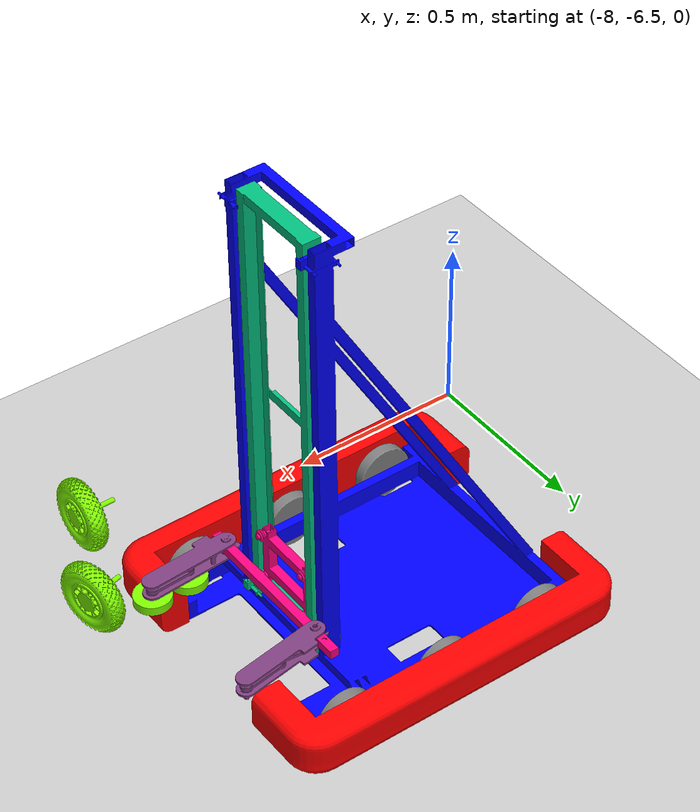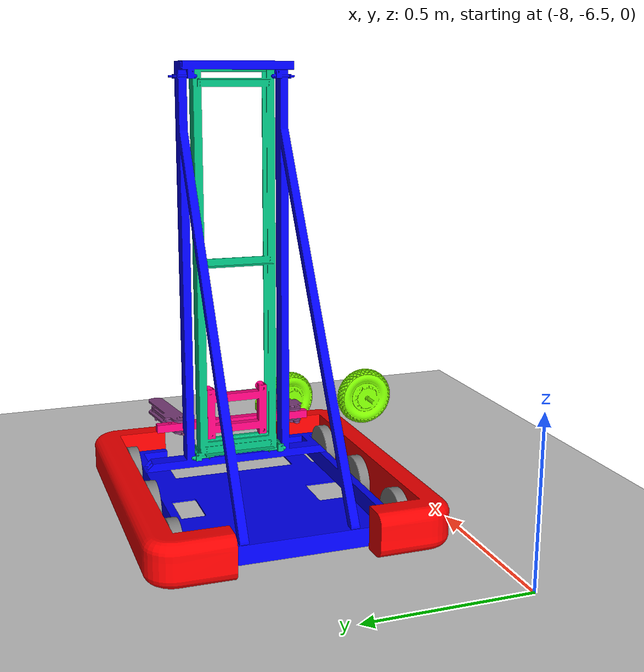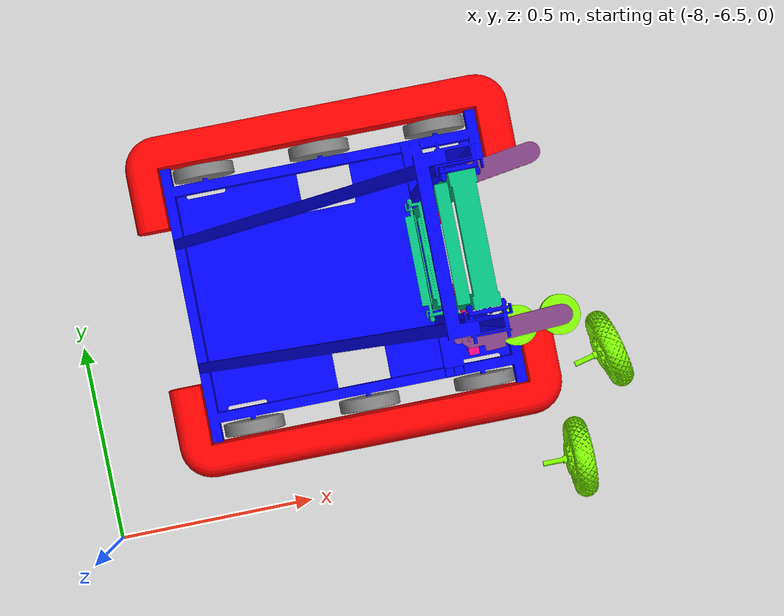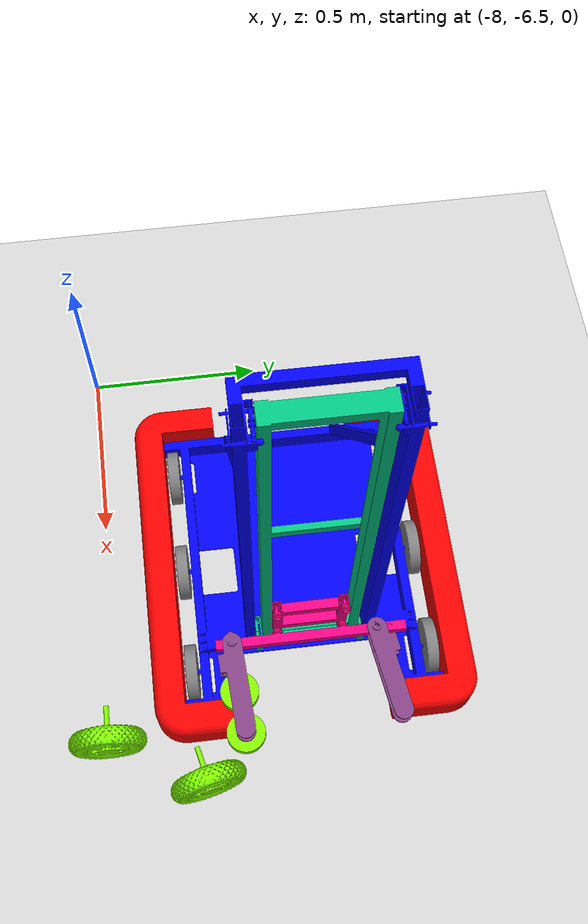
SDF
<sdf version="1.7">
 <world name="default">
  <model name="ground_plane">
   <static>1</static>
   <link name="link">
    <collision name="collision">
     <geometry><plane><normal>0 0 1</normal><size>100 100</size></plane></geometry>
     <surface>
      <contact><collide_bitmask>65535</collide_bitmask></contact>
      <friction><ode><mu>100</mu><mu2>50</mu2></ode></friction>
     </surface>
    </collision>
    <visual name="visual">
     <cast_shadows>0</cast_shadows>
     <geometry><plane><normal>0 0 1</normal><size>100 100</size></plane></geometry>
     <material>
      <script><uri>file://media/materials/scripts/gazebo.material</uri><name>Gazebo/Grey</name></script>
     </material>
    </visual>
   </link>
  </model>
  <model name="2018Robot">
   <pose>-7.35084 -5.95003 0.055337 0.001809 0.015359 -0.005377</pose>
   <link name="Body">
    <pose>0.051462 -7e-05 0.001399 1.571 -0 1.571</pose>
    <must_be_base_link>1</must_be_base_link>
    <velocity_decay><linear>0</linear><angular>0</angular></velocity_decay>
    <inertial>
     <mass>80</mass>
     <pose>-0.007594 0.05 0 0 -0 0</pose>
     <inertia><ixx>1</ixx><ixy>0</ixy><ixz>0</ixz><iyy>1</iyy><iyz>0</iyz><izz>1</izz></inertia>
    </inertial>
    <collision name="Body_collision">
     <geometry><mesh><scale>1 1 1</scale><uri>model://2018Robot/meshes/Body_col.STL</uri></mesh></geometry>
     <surface><friction><ode><mu>1</mu><mu2>1</mu2></ode></friction></surface>
    </collision>
    <visual name="Body_visual">
     <material><ambient>0 0 1 1</ambient><diffuse>0 0 1 1</diffuse></material>
     <geometry><mesh><scale>1 1 1</scale><uri>model://2018Robot/meshes/Body.STL</uri></mesh></geometry>
    </visual>
   </link>
   <link name="LFWheel">
    <pose>0.345347 0.328549 0.026924 1.5708 -0 1.5708</pose>
    <velocity_decay><linear>0</linear><angular>0.002</angular></velocity_decay>
    <inertial>
     <mass>0.593273</mass>
     <inertia><ixx>1</ixx><ixy>0</ixy><ixz>0</ixz><iyy>1</iyy><iyz>0</iyz><izz>1</izz></inertia>
    </inertial>
    <collision name="LFWheel_collision">
     <pose>-0.328619 -0.025525 -0.293885 0 -0 0</pose>
     <geometry><mesh><scale>1 1 1</scale><uri>model://2018Robot/meshes/LFWheel_col.STL</uri></mesh></geometry>
     <surface>
      <contact><ode><kp>1e+06</kp><kd>10</kd></ode></contact>
      <friction><ode><mu>1</mu><mu2>1</mu2></ode></friction>
     </surface>
    </collision>
    <visual name="LFWheel_visual">
     <pose>-0.328619 -0.025525 -0.293885 0 -0 0</pose>
     <material>
      <ambient>0.501961 0.501961 0.501961 1</ambient>
      <diffuse>0.501961 0.501961 0.501961 1</diffuse>
     </material>
     <geometry><mesh><scale>1 1 1</scale><uri>model://2018Robot/meshes/LFWheel.STL</uri></mesh></geometry>
    </visual>
   </link>
   <joint name="Body-LFWheel" type="revolute">
    <parent>Body</parent>
    <child>LFWheel</child>
    <axis>
     <xyz>-1 0 0</xyz>
     <dynamics>
      <damping>1</damping>
      <friction>1</friction>
      <spring_reference>0</spring_reference>
      <spring_stiffness>0</spring_stiffness>
     </dynamics>
     <limit><effort>50</effort><lower>-1e+16</lower><upper>1e+16</upper></limit>
    </axis>
   </joint>
   <link name="LCWheel">
    <pose>0.046897 0.328549 0.022047 1.5708 -0 1.5708</pose>
    <velocity_decay><linear>0</linear><angular>0.002</angular></velocity_decay>
    <inertial>
     <mass>0.593273</mass>
     <inertia><ixx>1</ixx><ixy>0</ixy><ixz>0</ixz><iyy>1</iyy><iyz>0</iyz><izz>1</izz></inertia>
    </inertial>
    <collision name="LCWheel_collision">
     <pose>-0.328619 -0.020649 0.004565 0 -0 0</pose>
     <geometry><mesh><scale>1 1 1</scale><uri>model://2018Robot/meshes/LCWheel_col.STL</uri></mesh></geometry>
     <surface>
      <contact><ode><kp>1e+06</kp><kd>10</kd></ode></contact>
      <friction><ode><mu>1</mu><mu2>1</mu2></ode></friction>
     </surface>
    </collision>
    <visual name="LCWheel_visual">
     <pose>-0.328619 -0.020649 0.004565 0 -0 0</pose>
     <material>
      <ambient>0.501961 0.501961 0.501961 1</ambient>
      <diffuse>0.501961 0.501961 0.501961 1</diffuse>
     </material>
     <geometry><mesh><scale>1 1 1</scale><uri>model://2018Robot/meshes/LCWheel.STL</uri></mesh></geometry>
    </visual>
   </link>
   <joint name="Body-LCWheel" type="revolute">
    <parent>Body</parent>
    <child>LCWheel</child>
    <axis>
     <xyz>-1 0 0</xyz>
     <dynamics>
      <damping>1</damping>
      <friction>1</friction>
      <spring_reference>0</spring_reference>
      <spring_stiffness>0</spring_stiffness>
     </dynamics>
     <limit><effort>50</effort><lower>-1e+16</lower><upper>1e+16</upper></limit>
    </axis>
   </joint>
   <link name="LBWheel">
    <pose>-0.251553 0.328549 0.026924 1.5708 -0 1.5708</pose>
    <velocity_decay><linear>0</linear><angular>0.002</angular></velocity_decay>
    <inertial>
     <mass>0.593273</mass>
     <inertia><ixx>1</ixx><ixy>0</ixy><ixz>0</ixz><iyy>1</iyy><iyz>0</iyz><izz>1</izz></inertia>
    </inertial>
    <collision name="LBWheel_collision">
     <pose>-0.328619 -0.025525 0.303015 0 -0 0</pose>
     <geometry><mesh><scale>1 1 1</scale><uri>model://2018Robot/meshes/LBWheel_col.STL</uri></mesh></geometry>
     <surface>
      <contact><ode><kp>1e+06</kp><kd>10</kd></ode></contact>
      <friction><ode><mu>1</mu><mu2>1</mu2></ode></friction>
     </surface>
    </collision>
    <visual name="LBWheel_visual">
     <pose>-0.328619 -0.025525 0.303015 0 -0 0</pose>
     <material>
      <ambient>0.501961 0.501961 0.501961 1</ambient>
      <diffuse>0.501961 0.501961 0.501961 1</diffuse>
     </material>
     <geometry><mesh><scale>1 1 1</scale><uri>model://2018Robot/meshes/LBWheel.STL</uri></mesh></geometry>
    </visual>
   </link>
   <joint name="Body-LBWheel" type="revolute">
    <parent>Body</parent>
    <child>LBWheel</child>
    <axis>
     <xyz>-1 0 0</xyz>
     <dynamics>
      <damping>1</damping>
      <friction>1</friction>
      <spring_reference>0</spring_reference>
      <spring_stiffness>0</spring_stiffness>
     </dynamics>
     <limit><effort>50</effort><lower>-1e+16</lower><upper>1e+16</upper></limit>
    </axis>
   </joint>
   <link name="RFWheel">
    <pose>0.347863 -0.328549 0.028093 1.5708 -0 1.5708</pose>
    <velocity_decay><linear>0</linear><angular>0.002</angular></velocity_decay>
    <inertial>
     <mass>0.593273</mass>
     <inertia><ixx>1</ixx><ixy>0</ixy><ixz>0</ixz><iyy>1</iyy><iyz>0</iyz><izz>1</izz></inertia>
    </inertial>
    <collision name="RFWheel_collision">
     <pose>0.328479 -0.026694 -0.2964 0 -0 0</pose>
     <geometry><mesh><scale>1 1 1</scale><uri>model://2018Robot/meshes/RFWheel_col.STL</uri></mesh></geometry>
     <surface>
      <contact><ode><kp>1e+06</kp><kd>10</kd></ode></contact>
      <friction><ode><mu>1</mu><mu2>1</mu2></ode></friction>
     </surface>
    </collision>
    <visual name="RFWheel_visual">
     <pose>0.328479 -0.026694 -0.2964 0 -0 0</pose>
     <material>
      <ambient>0.501961 0.501961 0.501961 1</ambient>
      <diffuse>0.501961 0.501961 0.501961 1</diffuse>
     </material>
     <geometry><mesh><scale>1 1 1</scale><uri>model://2018Robot/meshes/RFWheel.STL</uri></mesh></geometry>
    </visual>
   </link>
   <joint name="Body-RFWheel" type="revolute">
    <parent>Body</parent>
    <child>RFWheel</child>
    <axis>
     <xyz>1 0 0</xyz>
     <dynamics>
      <damping>1</damping>
      <friction>1</friction>
      <spring_reference>0</spring_reference>
      <spring_stiffness>0</spring_stiffness>
     </dynamics>
     <limit><effort>50</effort><lower>-1e+16</lower><upper>1e+16</upper></limit>
    </axis>
   </joint>
   <link name="RCWheel">
    <pose>0.049413 -0.328549 0.023216 1.5708 -0 1.5708</pose>
    <velocity_decay><linear>0</linear><angular>0.002</angular></velocity_decay>
    <inertial>
     <mass>0.593273</mass>
     <inertia><ixx>1</ixx><ixy>0</ixy><ixz>0</ixz><iyy>1</iyy><iyz>0</iyz><izz>1</izz></inertia>
    </inertial>
    <collision name="RCWheel_collision">
     <pose>0.328479 -0.021817 0.00205 0 -0 0</pose>
     <geometry><mesh><scale>1 1 1</scale><uri>model://2018Robot/meshes/RCWheel_col.STL</uri></mesh></geometry>
     <surface>
      <contact><ode><kp>1e+06</kp><kd>10</kd></ode></contact>
      <friction><ode><mu>1</mu><mu2>1</mu2></ode></friction>
     </surface>
    </collision>
    <visual name="RCWheel_visual">
     <pose>0.328479 -0.021817 0.00205 0 -0 0</pose>
     <material>
      <ambient>0.501961 0.501961 0.501961 1</ambient>
      <diffuse>0.501961 0.501961 0.501961 1</diffuse>
     </material>
     <geometry><mesh><scale>1 1 1</scale><uri>model://2018Robot/meshes/RCWheel.STL</uri></mesh></geometry>
    </visual>
   </link>
   <joint name="Body-RCWheel" type="revolute">
    <parent>Body</parent>
    <child>RCWheel</child>
    <axis>
     <xyz>1 0 0</xyz>
     <dynamics>
      <damping>1</damping>
      <friction>1</friction>
      <spring_reference>0</spring_reference>
      <spring_stiffness>0</spring_stiffness>
     </dynamics>
     <limit><effort>50</effort><lower>-1e+16</lower><upper>1e+16</upper></limit>
    </axis>
   </joint>
   <link name="RBWheel">
    <pose>-0.249037 -0.328549 0.028093 1.5708 -0 1.5708</pose>
    <velocity_decay><linear>0</linear><angular>0.002</angular></velocity_decay>
    <inertial>
     <mass>0.593273</mass>
     <inertia><ixx>1</ixx><ixy>0</ixy><ixz>0</ixz><iyy>1</iyy><iyz>0</iyz><izz>1</izz></inertia>
    </inertial>
    <collision name="RBWheel_collision">
     <pose>0.328479 -0.026694 0.3005 0 -0 0</pose>
     <geometry><mesh><scale>1 1 1</scale><uri>model://2018Robot/meshes/RBWheel_col.STL</uri></mesh></geometry>
     <surface>
      <contact><ode><kp>1e+06</kp><kd>10</kd></ode></contact>
      <friction><ode><mu>1</mu><mu2>1</mu2></ode></friction>
     </surface>
    </collision>
    <visual name="RBWheel_visual">
     <pose>0.328479 -0.026694 0.3005 0 -0 0</pose>
     <material>
      <ambient>0.501961 0.501961 0.501961 1</ambient>
      <diffuse>0.501961 0.501961 0.501961 1</diffuse>
     </material>
     <geometry><mesh><scale>1 1 1</scale><uri>model://2018Robot/meshes/RBWheel.STL</uri></mesh></geometry>
    </visual>
   </link>
   <joint name="Body-RBWheel" type="revolute">
    <parent>Body</parent>
    <child>RBWheel</child>
    <axis>
     <xyz>1 0 0</xyz>
     <dynamics>
      <damping>1</damping>
      <friction>1</friction>
      <spring_reference>0</spring_reference>
      <spring_stiffness>0</spring_stiffness>
     </dynamics>
     <limit><effort>50</effort><lower>-1e+16</lower><upper>1e+16</upper></limit>
    </axis>
   </joint>
   <link name="Elevator">
    <pose>0.273084 -0.000137 0.682522 1.5708 -0 1.5708</pose>
    <velocity_decay><linear>0</linear><angular>0</angular></velocity_decay>
    <inertial>
     <mass>1.01056</mass>
     <inertia>
      <ixx>0.312365</ixx>
      <ixy>4.29982e-17</ixy>
      <ixz>4.34846e-07</ixz>
      <iyy>0.031079</iyy>
      <iyz>5.94466e-05</iyz>
      <izz>0.342861</izz>
     </inertia>
    </inertial>
    <collision name="Elevator_collision">
     <pose>6.6e-05 -0.681123 -0.221622 0 -0 0</pose>
     <geometry><mesh><scale>1 1 1</scale><uri>model://2018Robot/meshes/Elevator_col.STL</uri></mesh></geometry>
     <surface><friction><ode><mu>1</mu><mu2>1</mu2></ode></friction></surface>
    </collision>
    <visual name="Elevator_visual">
     <pose>6.6e-05 -0.681123 -0.221622 0 -0 0</pose>
     <material><ambient>0 0.752941 0.501961 1</ambient><diffuse>0 0.752941 0.501961 1</diffuse></material>
     <geometry><mesh><scale>1 1 1</scale><uri>model://2018Robot/meshes/Elevator.STL</uri></mesh></geometry>
    </visual>
   </link>
   <joint name="Body-Elevator" type="prismatic">
    <parent>Body</parent>
    <child>Elevator</child>
    <pose>0.146685 0 0.028443 0 -0 0</pose>
    <axis>
     <xyz>0 1 0</xyz>
     <dynamics>
      <damping>40</damping>
      <friction>1</friction>
      <spring_reference>0</spring_reference>
      <spring_stiffness>0</spring_stiffness>
     </dynamics>
     <limit><upper>1</upper><lower>0</lower><effort>200</effort></limit>
    </axis>
   </joint>
   <link name="Carriage">
    <pose>0.298251 -0.000525 0.196157 1.5708 -0 1.5708</pose>
    <velocity_decay><linear>0</linear><angular>0</angular></velocity_decay>
    <inertial>
     <mass>0.756134</mass>
     <inertia>
      <ixx>0.00151361</ixx>
      <ixy>7.90153e-06</ixy>
      <ixz>7.73069e-06</ixz>
      <iyy>0.00224964</iyy>
      <iyz>0.000406864</iyz>
      <izz>0.00293101</izz>
     </inertia>
    </inertial>
    <collision name="Carriage_collision">
     <pose>0.000455 -0.194758 -0.246789 0 -0 0</pose>
     <geometry><mesh><scale>1 1 1</scale><uri>model://2018Robot/meshes/Carriage_col.STL</uri></mesh></geometry>
     <surface><friction><ode><mu>1</mu><mu2>1</mu2></ode></friction></surface>
    </collision>
    <visual name="Carriage_visual">
     <pose>0.000455 -0.194758 -0.246789 0 -0 0</pose>
     <material><ambient>1 0 0.501961 1</ambient><diffuse>1 0 0.501961 1</diffuse></material>
     <geometry><mesh><scale>1 1 1</scale><uri>model://2018Robot/meshes/Carriage.STL</uri></mesh></geometry>
    </visual>
    <sensor name="CarriageCamera" type="camera">
     <visualize>0</visualize>
     <always_on>1</always_on>
     <update_rate>30</update_rate>
     <pose>0.000389 0.071268 -0.009423 1.57079 -1.57079 3.14159</pose>
     <camera name="Carriagecamera">
      <horizontal_fov>1.5708</horizontal_fov>
      <image><width>320</width><height>240</height></image>
      <clip><near>0.1</near><far>100</far></clip>
     </camera>
     <plugin name="camera2" filename="sim_camera.dll">
      <topic>~/gazebo/frc/simulator/camera/1</topic>
      <port>9001</port>
      <fps>20</fps>
      <enabled>1</enabled>
      <savepath>tmp</savepath>
      <maxframes>0</maxframes>
      <video>back.avi</video>
     </plugin>
    </sensor>
   </link>
   <joint name="Elevator-Carriage" type="prismatic">
    <parent>Elevator</parent>
    <child>Carriage</child>
    <pose>0.102624 0.020468 0.003277 0 -0 0</pose>
    <axis>
     <xyz>0 1 0</xyz>
     <dynamics>
      <damping>40</damping>
      <friction>1</friction>
      <spring_reference>0</spring_reference>
      <spring_stiffness>0</spring_stiffness>
     </dynamics>
     <limit><upper>1</upper><lower>0</lower><effort>200</effort></limit>
    </axis>
   </joint>
   <link name="Bumpers">
    <pose>0.051462 -7e-05 0.001399 1.571 -0 1.571</pose>
    <velocity_decay><linear>0</linear><angular>0</angular></velocity_decay>
    <inertial>
     <mass>0.398486</mass>
     <pose>3.5e-05 0.049041 -0.004565 0 -0 0</pose>
     <inertia>
      <ixx>0.01</ixx>
      <ixy>1.03639e-14</ixy>
      <ixz>2.06e-06</ixz>
      <iyy>0.05</iyy>
      <iyz>4.06738e-19</iyz>
      <izz>0.05</izz>
     </inertia>
    </inertial>
    <collision name="Bumpers_collision">
     <geometry><mesh><scale>1 1 1</scale><uri>model://2018Robot/meshes/Bumpers_col.STL</uri></mesh></geometry>
     <surface>
      <contact><ode><kp>1e+07</kp><kd>2</kd></ode></contact>
      <friction><ode><mu>1</mu><mu2>1</mu2></ode></friction>
     </surface>
    </collision>
    <visual name="Bumpers_visual">
     <material><ambient>1 0 0 1</ambient><diffuse>1 0 0 1</diffuse></material>
     <geometry><mesh><scale>1 1 1</scale><uri>model://2018Robot/meshes/Bumpers.STL</uri></mesh></geometry>
    </visual>
   </link>
   <joint name="Body-Bumpers" type="fixed">
    <parent>Body</parent>
    <child>Bumpers</child>
    <pose>0.146619 0.049041 0.250065 0 -0 0</pose>
    <axis>
     <xyz>0 1 0</xyz>
     <dynamics>
      <damping>0</damping>
      <friction>0</friction>
      <spring_reference>0</spring_reference>
      <spring_stiffness>0</spring_stiffness>
     </dynamics>
     <limit><upper>0.001</upper><lower>0</lower><effort>1</effort></limit>
    </axis>
   </joint>
   <link name="LeftArm">
    <pose>0.444244 0.193535 0.170457 1.5708 -0 1.8708</pose>
    <velocity_decay><linear>0</linear><angular>0</angular></velocity_decay>
    <inertial>
     <mass>0.334658</mass>
     <inertia>
      <ixx>0.00957838</ixx>
      <ixy>4.76821e-06</ixy>
      <ixz>0.0013598</ixz>
      <iyy>0.00894154</iyy>
      <iyz>1.85432e-05</iyz>
      <izz>0.00111931</izz>
     </inertia>
    </inertial>
    <collision name="LeftArm_collision">
     <pose>-0.193605 -0.169059 -0.392782 0 -0 0</pose>
     <geometry><mesh><scale>1 1 1</scale><uri>model://2018Robot/meshes/LeftArm_col.STL</uri></mesh></geometry>
     <surface><friction><ode><mu>0</mu><mu2>0</mu2></ode></friction></surface>
    </collision>
    <visual name="LeftArm_visual">
     <pose>-0.193605 -0.169059 -0.392782 0 -0 0</pose>
     <material>
      <ambient>0.501961 0.25098 0.501961 1</ambient>
      <diffuse>0.501961 0.25098 0.501961 1</diffuse>
     </material>
     <geometry><mesh><scale>1 1 1</scale><uri>model://2018Robot/meshes/LeftArm.STL</uri></mesh></geometry>
    </visual>
   </link>
   <joint name="Carriage-LeftArm" type="revolute">
    <parent>Carriage</parent>
    <child>LeftArm</child>
    <pose>0.016249 -0 -0.119704 0 -0 1.8708</pose>
    <axis>
     <xyz>1 0 0</xyz>
     <dynamics>
      <damping>0</damping>
      <friction>0</friction>
      <spring_reference>0</spring_reference>
      <spring_stiffness>0</spring_stiffness>
     </dynamics>
     <limit><upper>0.25</upper><lower>-0.15</lower><effort>100</effort></limit>
    </axis>
   </joint>
   <link name="RightArm">
    <pose>0.442366 -0.207335 0.171128 1.5708 -0 1.5708</pose>
    <velocity_decay><linear>0</linear><angular>0</angular></velocity_decay>
    <inertial>
     <mass>0.349563</mass>
     <inertia>
      <ixx>0.00957838</ixx>
      <ixy>4.76821e-06</ixy>
      <ixz>0.0013598</ixz>
      <iyy>0.00894154</iyy>
      <iyz>1.85432e-05</iyz>
      <izz>0.00111931</izz>
     </inertia>
    </inertial>
    <collision name="RightArm_collision">
     <pose>0.207264 -0.169729 -0.390903 0 -0 0</pose>
     <geometry><mesh><scale>1 1 1</scale><uri>model://2018Robot/meshes/RightArm_col.STL</uri></mesh></geometry>
     <surface><friction><ode><mu>0</mu><mu2>0</mu2></ode></friction></surface>
    </collision>
    <visual name="RightArm_visual">
     <pose>0.207264 -0.169729 -0.390903 0 -0 0</pose>
     <material>
      <ambient>0.501961 0.25098 0.501961 1</ambient>
      <diffuse>0.501961 0.25098 0.501961 1</diffuse>
     </material>
     <geometry><mesh><scale>1 1 1</scale><uri>model://2018Robot/meshes/RightArm.STL</uri></mesh></geometry>
    </visual>
   </link>
   <joint name="Carriage-RightArm" type="revolute">
    <parent>Carriage</parent>
    <child>RightArm</child>
    <pose>-0.004521 -0 -0.117826 0 0 -1.5708</pose>
    <axis>
     <xyz>-1 0 0</xyz>
     <dynamics>
      <damping>0</damping>
      <friction>0</friction>
      <spring_reference>0</spring_reference>
      <spring_stiffness>0</spring_stiffness>
     </dynamics>
     <limit><upper>0.3</upper><lower>-0.1</lower><effort>100</effort></limit>
    </axis>
   </joint>
   <link name="L1Wheel">
    <pose>0.443715 0.191783 0.134389 1.5708 -0 1.5708</pose>
    <velocity_decay><linear>0</linear><angular>0</angular></velocity_decay>
    <inertial>
     <mass>0.205926</mass>
     <inertia><ixx>0.01</ixx><ixy>0</ixy><ixz>0</ixz><iyy>0.01</iyy><iyz>0</iyz><izz>0.01</izz></inertia>
    </inertial>
    <collision name="L1Wheel_collision">
     <pose>-0.191853 -0.13299 -0.392253 0 -0 0</pose>
     <geometry><mesh><scale>1 1 1</scale><uri>model://2018Robot/meshes/L1Wheel_col.STL</uri></mesh></geometry>
     <surface>
      <contact><ode><kp>200000</kp><kd>10</kd></ode></contact>
      <friction><ode><mu>2</mu></ode></friction>
     </surface>
    </collision>
    <visual name="L1Wheel_visual">
     <pose>-0.191853 -0.13299 -0.392253 0 -0 0</pose>
     <material><ambient>0.501961 1 0 1</ambient><diffuse>0.501961 1 0 1</diffuse></material>
     <geometry><mesh><scale>1 1 1</scale><uri>model://2018Robot/meshes/L1Wheel.STL</uri></mesh></geometry>
    </visual>
   </link>
   <joint name="LeftArm-L1Wheel" type="revolute">
    <parent>LeftArm</parent>
    <child>L1Wheel</child>
    <pose>0.000233 -0 3.5e-05 0 -0 1.5708</pose>
    <axis>
     <xyz>1 0 0</xyz>
     <dynamics>
      <damping>1</damping>
      <friction>1</friction>
      <spring_reference>0</spring_reference>
      <spring_stiffness>0</spring_stiffness>
     </dynamics>
     <limit><effort>100</effort><lower>-1e+16</lower><upper>1e+16</upper></limit>
    </axis>
   </joint>
   <link name="L2Wheel">
    <pose>0.552489 0.21 0.134389 1.5708 -0 1.8108</pose>
    <velocity_decay><linear>0</linear><angular>0</angular></velocity_decay>
    <inertial>
     <mass>0.205926</mass>
     <inertia><ixx>0.01</ixx><ixy>0</ixy><ixz>0</ixz><iyy>0.01</iyy><iyz>0</iyz><izz>0.01</izz></inertia>
    </inertial>
    <collision name="L2Wheel_collision">
     <pose>-0.175423 -0.13299 -0.501027 0 -0 0</pose>
     <geometry><mesh><scale>1 1 1</scale><uri>model://2018Robot/meshes/L2Wheel_col.STL</uri></mesh></geometry>
     <surface>
      <contact><ode><kp>200000</kp><kd>10</kd></ode></contact>
      <friction><ode><mu>2</mu></ode></friction>
     </surface>
    </collision>
    <visual name="L2Wheel_visual">
     <pose>-0.175423 -0.13299 -0.501027 0 -0 0</pose>
     <material><ambient>0.501961 1 0 1</ambient><diffuse>0.501961 1 0 1</diffuse></material>
     <geometry><mesh><scale>1 1 1</scale><uri>model://2018Robot/meshes/L2Wheel.STL</uri></mesh></geometry>
    </visual>
   </link>
   <joint name="LeftArm-L2Wheel" type="revolute">
    <parent>LeftArm</parent>
    <child>L2Wheel</child>
    <pose>0.000446 -0 6.7e-05 0 0 -1.5708</pose>
    <axis>
     <xyz>-1 0 0</xyz>
     <dynamics>
      <damping>1</damping>
      <friction>1</friction>
      <spring_reference>0</spring_reference>
      <spring_stiffness>0</spring_stiffness>
     </dynamics>
     <limit><effort>100</effort><lower>-1e+16</lower><upper>1e+16</upper></limit>
    </axis>
   </joint>
   <link name="R1Wheel">
    <pose>0.444896 -0.205427 0.134389 1.5708 -0 1.5708</pose>
    <velocity_decay><linear>0</linear><angular>0</angular></velocity_decay>
    <inertial>
     <mass>0.205926</mass>
     <inertia><ixx>0.01</ixx><ixy>0</ixy><ixz>0</ixz><iyy>0.01</iyy><iyz>0</iyz><izz>0.01</izz></inertia>
    </inertial>
    <collision name="R1Wheel_collision">
     <pose>0.205357 -0.13299 -0.393433 0 -0 0</pose>
     <geometry><mesh><scale>1 1 1</scale><uri>model://2018Robot/meshes/R1Wheel_col.STL</uri></mesh></geometry>
     <surface>
      <contact><ode><kp>200000</kp><kd>10</kd></ode></contact>
      <friction><ode><mu>2</mu></ode></friction>
     </surface>
    </collision>
    <visual name="R1Wheel_visual">
     <pose>0.205357 -0.13299 -0.393433 0 -0 0</pose>
     <material><ambient>0.501961 1 0 1</ambient><diffuse>0.501961 1 0 1</diffuse></material>
     <geometry><mesh><scale>1 1 1</scale><uri>model://2018Robot/meshes/R1Wheel.STL</uri></mesh></geometry>
    </visual>
   </link>
   <joint name="RightArm-R1Wheel" type="revolute">
    <parent>RightArm</parent>
    <child>R1Wheel</child>
    <pose>0.000235 -0 -1.3e-05 0 0 -1.5708</pose>
    <axis>
     <xyz>1 0 0</xyz>
     <dynamics>
      <damping>1</damping>
      <friction>1</friction>
      <spring_reference>0</spring_reference>
      <spring_stiffness>0</spring_stiffness>
     </dynamics>
     <limit><effort>100</effort><lower>-1e+16</lower><upper>1e+16</upper></limit>
    </axis>
   </joint>
   <link name="R2Wheel">
    <pose>0.554746 -0.199559 0.134389 1.5708 -0 1.5708</pose>
    <velocity_decay><linear>0</linear><angular>0</angular></velocity_decay>
    <inertial>
     <mass>0.205926</mass>
     <inertia><ixx>0.01</ixx><ixy>0</ixy><ixz>0</ixz><iyy>0.01</iyy><iyz>0</iyz><izz>0.01</izz></inertia>
    </inertial>
    <collision name="R2Wheel_collision">
     <pose>0.199489 -0.13299 -0.503284 0 -0 0</pose>
     <geometry><mesh><scale>1 1 1</scale><uri>model://2018Robot/meshes/R2Wheel_col.STL</uri></mesh></geometry>
     <surface>
      <contact><ode><kp>200000</kp><kd>10</kd></ode></contact>
      <friction><ode><mu>2</mu></ode></friction>
     </surface>
    </collision>
    <visual name="R2Wheel_visual">
     <pose>0.199489 -0.13299 -0.503284 0 -0 0</pose>
     <material><ambient>0.501961 1 0 1</ambient><diffuse>0.501961 1 0 1</diffuse></material>
     <geometry><mesh><scale>1 1 1</scale><uri>model://2018Robot/meshes/R2Wheel.STL</uri></mesh></geometry>
    </visual>
   </link>
   <joint name="RightArm-R2Wheel" type="revolute">
    <parent>RightArm</parent>
    <child>R2Wheel</child>
    <pose>0.00045 -0 -2.4e-05 0 -0 1.5708</pose>
    <axis>
     <xyz>-1 0 0</xyz>
     <dynamics>
      <damping>1</damping>
      <friction>1</friction>
      <spring_reference>0</spring_reference>
      <spring_stiffness>0</spring_stiffness>
     </dynamics>
     <limit><effort>100</effort><lower>-1e+16</lower><upper>1e+16</upper></limit>
    </axis>
   </joint>
   <plugin name="clock" filename="sim_clock.dll"><topic>~/gazebo/frc/simulator/clock</topic></plugin>
   <plugin name="Body_gyro" filename="sim_gyro.dll">
    <link>Body</link>
    <topic>~/gazebo/frc/simulator/gyro/0</topic>
    <units>degrees</units>
    <axis>yaw</axis>
   </plugin>
   <plugin name="Body-LFWheel_motor" filename="sim_motor.dll">
    <joint>Body-LFWheel</joint>
    <topic>~/gazebo/frc/simulator/motor/1</topic>
    <multiplier>30</multiplier>
   </plugin>
   <plugin name="Body-LCWheel_motor" filename="sim_motor.dll">
    <joint>Body-LCWheel</joint>
    <topic>~/gazebo/frc/simulator/motor/1</topic>
    <multiplier>30</multiplier>
   </plugin>
   <plugin name="Body-LBWheel_motor" filename="sim_motor.dll">
    <joint>Body-LBWheel</joint>
    <topic>~/gazebo/frc/simulator/motor/1</topic>
    <multiplier>30</multiplier>
   </plugin>
   <plugin name="Body-LCWheel_encoder" filename="sim_encoder.dll">
    <joint>Body-LCWheel</joint>
    <topic>~/gazebo/frc/simulator/encoder/1</topic>
    <multiplier>1</multiplier>
   </plugin>
   <plugin name="Body-RFWheel_motor" filename="sim_motor.dll">
    <joint>Body-RFWheel</joint>
    <topic>~/gazebo/frc/simulator/motor/2</topic>
    <multiplier>30</multiplier>
   </plugin>
   <plugin name="Body-RCWheel_motor" filename="sim_motor.dll">
    <joint>Body-RCWheel</joint>
    <topic>~/gazebo/frc/simulator/motor/2</topic>
    <multiplier>30</multiplier>
   </plugin>
   <plugin name="Body-RBWheel_motor" filename="sim_motor.dll">
    <joint>Body-RBWheel</joint>
    <topic>~/gazebo/frc/simulator/motor/2</topic>
    <multiplier>30</multiplier>
   </plugin>
   <plugin name="Body-RCWheel_encoder" filename="sim_encoder.dll">
    <joint>Body-RCWheel</joint>
    <topic>~/gazebo/frc/simulator/encoder/2</topic>
    <multiplier>1</multiplier>
   </plugin>
   <plugin name="Body-Elevator_motor" filename="sim_motor.dll">
    <joint>Body-Elevator</joint>
    <topic>~/gazebo/frc/simulator/motor/7</topic>
    <multiplier>80</multiplier>
   </plugin>
   <plugin name="Body-Elevator_encoder" filename="sim_encoder.dll">
    <joint>Body-Elevator</joint>
    <topic>~/gazebo/frc/simulator/encoder/7</topic>
    <multiplier>6.28</multiplier>
   </plugin>
   <plugin name="Elevator-Carriage_motor" filename="sim_motor.dll">
    <joint>Elevator-Carriage</joint>
    <topic>~/gazebo/frc/simulator/motor/8</topic>
    <multiplier>50</multiplier>
   </plugin>
   <plugin name="Body-Carriage_encoder" filename="sim_encoder.dll">
    <joint>Elevator-Carriage</joint>
    <topic>~/gazebo/frc/simulator/encoder/8</topic>
    <multiplier>6.28</multiplier>
   </plugin>
   <plugin name="Carriage-LeftArm_Piston" filename="sim_piston.dll">
    <joint>Carriage-LeftArm</joint>
    <topic>~/gazebo/frc/simulator/piston/1</topic>
    <direction>forward</direction>
    <forward-force>100</forward-force>
    <reverse-force>100</reverse-force>
   </plugin>
   <plugin name="Carriage-RightArm_Piston" filename="sim_piston.dll">
    <joint>Carriage-RightArm</joint>
    <topic>~/gazebo/frc/simulator/piston/1</topic>
    <direction>reversed</direction>
    <forward-force>100</forward-force>
    <reverse-force>100</reverse-force>
   </plugin>
   <plugin name="LeftArm-L1Wheel_motor" filename="sim_motor.dll">
    <joint>LeftArm-L1Wheel</joint>
    <topic>~/gazebo/frc/simulator/motor/5</topic>
    <multiplier>50</multiplier>
   </plugin>
   <plugin name="LeftArm-L2Wheel_motor" filename="sim_motor.dll">
    <joint>LeftArm-L2Wheel</joint>
    <topic>~/gazebo/frc/simulator/motor/5</topic>
    <multiplier>50</multiplier>
   </plugin>
   <plugin name="RightArm-R1Wheel_motor" filename="sim_motor.dll">
    <joint>RightArm-R1Wheel</joint>
    <topic>~/gazebo/frc/simulator/motor/5</topic>
    <multiplier>50</multiplier>
   </plugin>
   <plugin name="RightArm-R2Wheel_motor" filename="sim_motor.dll">
    <joint>RightArm-R2Wheel</joint>
    <topic>~/gazebo/frc/simulator/motor/5</topic>
    <multiplier>50</multiplier>
   </plugin>
  </model>
 </world>
</sdf>
